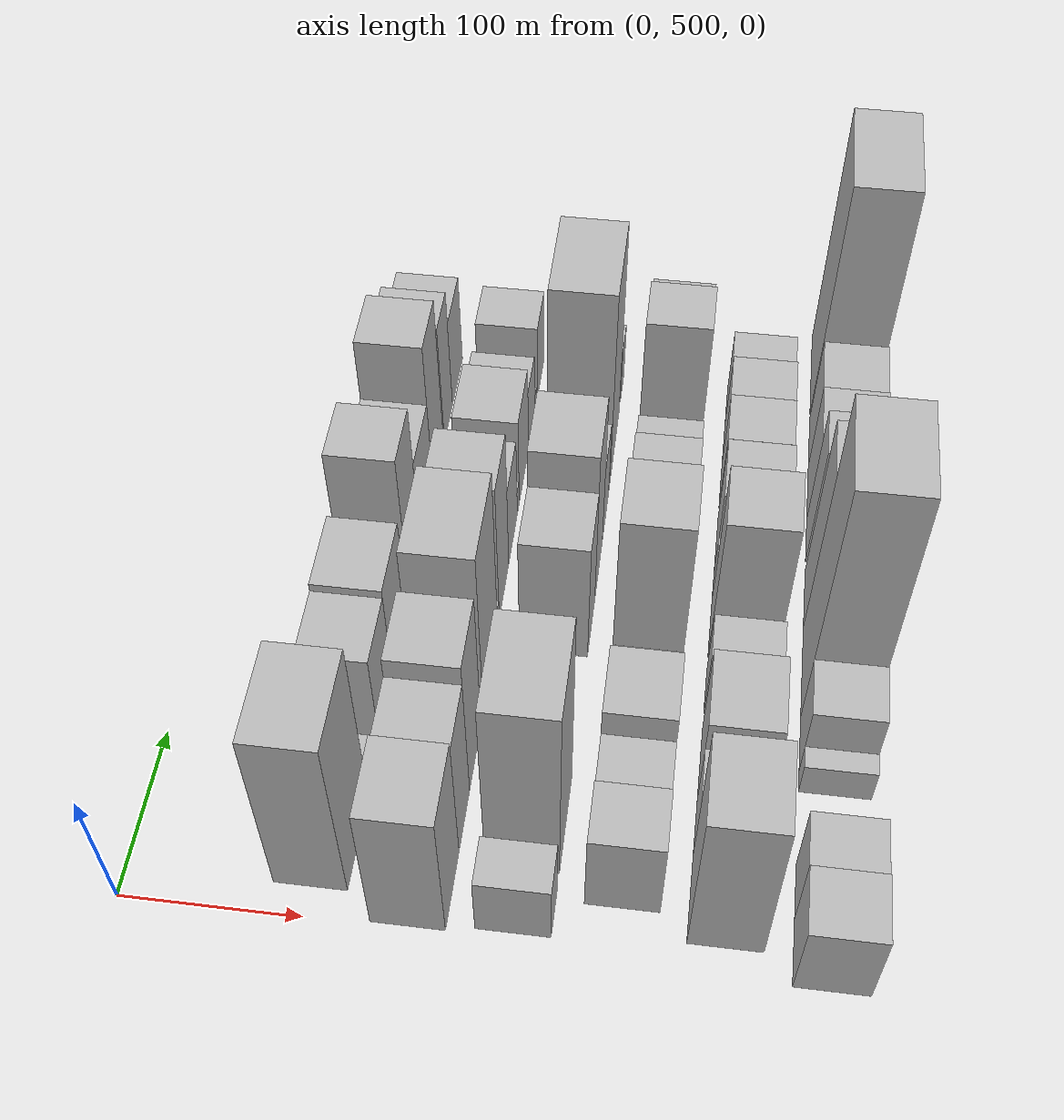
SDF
<sdf version="1.6">
 <world name="default">
  <model name="building_39">
   <static>1</static>
   <pose>100.0000 546.3660 0 0.000000 0.000000 0.000000</pose>
   <link name="link">
    <pose>0 0 72.00 0 0 0</pose>
    <collision name="collision"><geometry><box><size>40.0000 57.4672 144.0000</size></box></geometry></collision>
    <visual name="visual">
     <cast_shadows>0</cast_shadows>
     <geometry><box><size>40.0000 57.4672 144.0000</size></box></geometry>
     <material>
      <script>
       <uri>model://HANNAS_wall/materials/scripts</uri>
       <uri>model://HANNAS_wall/materials/textures</uri>
       <name>vrc/HANNAS_wall</name>
      </script>
     </material>
    </visual>
   </link>
  </model>
  <model name="building_40">
   <static>1</static>
   <pose>100.0000 584.2529 0 0.000000 0.000000 0.000000</pose>
   <link name="link">
    <pose>0 0 16.50 0 0 0</pose>
    <collision name="collision"><geometry><box><size>40.0000 18.3066 33.0000</size></box></geometry></collision>
    <visual name="visual">
     <cast_shadows>0</cast_shadows>
     <geometry><box><size>40.0000 18.3066 33.0000</size></box></geometry>
     <material>
      <script>
       <uri>model://HANNAS_wall/materials/scripts</uri>
       <uri>model://HANNAS_wall/materials/textures</uri>
       <name>vrc/HANNAS_wall</name>
      </script>
     </material>
    </visual>
   </link>
  </model>
  <model name="building_41">
   <static>1</static>
   <pose>100.0000 597.4368 0 0.000000 0.000000 0.000000</pose>
   <link name="link">
    <pose>0 0 9.00 0 0 0</pose>
    <collision name="collision"><geometry><box><size>40.0000 8.0611 18.0000</size></box></geometry></collision>
    <visual name="visual">
     <cast_shadows>0</cast_shadows>
     <geometry><box><size>40.0000 8.0611 18.0000</size></box></geometry>
     <material>
      <script>
       <uri>model://HANNAS_wall/materials/scripts</uri>
       <uri>model://HANNAS_wall/materials/textures</uri>
       <name>vrc/HANNAS_wall</name>
      </script>
     </material>
    </visual>
   </link>
  </model>
  <model name="building_42">
   <static>1</static>
   <pose>100.0000 629.4989 0 0.000000 0.000000 0.000000</pose>
   <link name="link">
    <pose>0 0 40.50 0 0 0</pose>
    <collision name="collision"><geometry><box><size>40.0000 42.0633 81.0000</size></box></geometry></collision>
    <visual name="visual">
     <cast_shadows>0</cast_shadows>
     <geometry><box><size>40.0000 42.0633 81.0000</size></box></geometry>
     <material>
      <script>
       <uri>model://HANNAS_wall/materials/scripts</uri>
       <uri>model://HANNAS_wall/materials/textures</uri>
       <name>vrc/HANNAS_wall</name>
      </script>
     </material>
    </visual>
   </link>
  </model>
  <model name="building_43">
   <static>1</static>
   <pose>100.0000 674.1150 0 0.000000 0.000000 0.000000</pose>
   <link name="link">
    <pose>0 0 43.50 0 0 0</pose>
    <collision name="collision"><geometry><box><size>40.0000 47.1688 87.0000</size></box></geometry></collision>
    <visual name="visual">
     <cast_shadows>0</cast_shadows>
     <geometry><box><size>40.0000 47.1688 87.0000</size></box></geometry>
     <material>
      <script>
       <uri>model://HANNAS_wall/materials/scripts</uri>
       <uri>model://HANNAS_wall/materials/textures</uri>
       <name>vrc/HANNAS_wall</name>
      </script>
     </material>
    </visual>
   </link>
  </model>
  <model name="building_44">
   <static>1</static>
   <pose>100.0000 726.0503 0 0.000000 0.000000 0.000000</pose>
   <link name="link">
    <pose>0 0 64.50 0 0 0</pose>
    <collision name="collision"><geometry><box><size>40.0000 38.7017 129.0000</size></box></geometry></collision>
    <visual name="visual">
     <cast_shadows>0</cast_shadows>
     <geometry><box><size>40.0000 38.7017 129.0000</size></box></geometry>
     <material>
      <script>
       <uri>model://HANNAS_wall/materials/scripts</uri>
       <uri>model://HANNAS_wall/materials/textures</uri>
       <name>vrc/HANNAS_wall</name>
      </script>
     </material>
    </visual>
   </link>
  </model>
  <model name="building_45">
   <static>1</static>
   <pose>100.0000 768.8857 0 0.000000 0.000000 0.000000</pose>
   <link name="link">
    <pose>0 0 40.50 0 0 0</pose>
    <collision name="collision"><geometry><box><size>40.0000 46.9692 81.0000</size></box></geometry></collision>
    <visual name="visual">
     <cast_shadows>0</cast_shadows>
     <geometry><box><size>40.0000 46.9692 81.0000</size></box></geometry>
     <material>
      <script>
       <uri>model://HANNAS_wall/materials/scripts</uri>
       <uri>model://HANNAS_wall/materials/textures</uri>
       <name>vrc/HANNAS_wall</name>
      </script>
     </material>
    </visual>
   </link>
  </model>
  <model name="building_46">
   <static>1</static>
   <pose>100.0000 811.8883 0 0.000000 0.000000 0.000000</pose>
   <link name="link">
    <pose>0 0 64.50 0 0 0</pose>
    <collision name="collision"><geometry><box><size>40.0000 39.0361 129.0000</size></box></geometry></collision>
    <visual name="visual">
     <cast_shadows>0</cast_shadows>
     <geometry><box><size>40.0000 39.0361 129.0000</size></box></geometry>
     <material>
      <script>
       <uri>model://HANNAS_wall/materials/scripts</uri>
       <uri>model://HANNAS_wall/materials/textures</uri>
       <name>vrc/HANNAS_wall</name>
      </script>
     </material>
    </visual>
   </link>
  </model>
  <model name="building_47">
   <static>1</static>
   <pose>100.0000 850.6495 0 0.000000 0.000000 0.000000</pose>
   <link name="link">
    <pose>0 0 51.00 0 0 0</pose>
    <collision name="collision"><geometry><box><size>40.0000 32.4864 102.0000</size></box></geometry></collision>
    <visual name="visual">
     <cast_shadows>0</cast_shadows>
     <geometry><box><size>40.0000 32.4864 102.0000</size></box></geometry>
     <material>
      <script>
       <uri>model://HANNAS_wall/materials/scripts</uri>
       <uri>model://HANNAS_wall/materials/textures</uri>
       <name>vrc/HANNAS_wall</name>
      </script>
     </material>
    </visual>
   </link>
  </model>
  <model name="building_48">
   <static>1</static>
   <pose>100.0000 888.0390 0 0.000000 0.000000 0.000000</pose>
   <link name="link">
    <pose>0 0 37.50 0 0 0</pose>
    <collision name="collision"><geometry><box><size>40.0000 42.2925 75.0000</size></box></geometry></collision>
    <visual name="visual">
     <cast_shadows>0</cast_shadows>
     <geometry><box><size>40.0000 42.2925 75.0000</size></box></geometry>
     <material>
      <script>
       <uri>model://HANNAS_wall/materials/scripts</uri>
       <uri>model://HANNAS_wall/materials/textures</uri>
       <name>vrc/HANNAS_wall</name>
      </script>
     </material>
    </visual>
   </link>
  </model>
  <model name="building_86">
   <static>1</static>
   <pose>155.0000 524.5119 0 0.000000 0.000000 0.000000</pose>
   <link name="link">
    <pose>0 0 57.00 0 0 0</pose>
    <collision name="collision"><geometry><box><size>40.0000 45.1361 114.0000</size></box></geometry></collision>
    <visual name="visual">
     <cast_shadows>0</cast_shadows>
     <geometry><box><size>40.0000 45.1361 114.0000</size></box></geometry>
     <material>
      <script>
       <uri>model://HANNAS_wall/materials/scripts</uri>
       <uri>model://HANNAS_wall/materials/textures</uri>
       <name>vrc/HANNAS_wall</name>
      </script>
     </material>
    </visual>
   </link>
  </model>
  <model name="building_87">
   <static>1</static>
   <pose>155.0000 565.7863 0 0.000000 0.000000 0.000000</pose>
   <link name="link">
    <pose>0 0 54.00 0 0 0</pose>
    <collision name="collision"><geometry><box><size>40.0000 37.4128 108.0000</size></box></geometry></collision>
    <visual name="visual">
     <cast_shadows>0</cast_shadows>
     <geometry><box><size>40.0000 37.4128 108.0000</size></box></geometry>
     <material>
      <script>
       <uri>model://HANNAS_wall/materials/scripts</uri>
       <uri>model://HANNAS_wall/materials/textures</uri>
       <name>vrc/HANNAS_wall</name>
      </script>
     </material>
    </visual>
   </link>
  </model>
  <model name="building_88">
   <static>1</static>
   <pose>155.0000 605.6203 0 0.000000 0.000000 0.000000</pose>
   <link name="link">
    <pose>0 0 61.50 0 0 0</pose>
    <collision name="collision"><geometry><box><size>40.0000 42.2552 123.0000</size></box></geometry></collision>
    <visual name="visual">
     <cast_shadows>0</cast_shadows>
     <geometry><box><size>40.0000 42.2552 123.0000</size></box></geometry>
     <material>
      <script>
       <uri>model://HANNAS_wall/materials/scripts</uri>
       <uri>model://HANNAS_wall/materials/textures</uri>
       <name>vrc/HANNAS_wall</name>
      </script>
     </material>
    </visual>
   </link>
  </model>
  <model name="building_89">
   <static>1</static>
   <pose>155.0000 664.4344 0 0.000000 0.000000 0.000000</pose>
   <link name="link">
    <pose>0 0 72.00 0 0 0</pose>
    <collision name="collision"><geometry><box><size>40.0000 57.3729 144.0000</size></box></geometry></collision>
    <visual name="visual">
     <cast_shadows>0</cast_shadows>
     <geometry><box><size>40.0000 57.3729 144.0000</size></box></geometry>
     <material>
      <script>
       <uri>model://HANNAS_wall/materials/scripts</uri>
       <uri>model://HANNAS_wall/materials/textures</uri>
       <name>vrc/HANNAS_wall</name>
      </script>
     </material>
    </visual>
   </link>
  </model>
  <model name="building_90">
   <static>1</static>
   <pose>155.0000 696.8789 0 0.000000 0.000000 0.000000</pose>
   <link name="link">
    <pose>0 0 9.00 0 0 0</pose>
    <collision name="collision"><geometry><box><size>40.0000 7.5162 18.0000</size></box></geometry></collision>
    <visual name="visual">
     <cast_shadows>0</cast_shadows>
     <geometry><box><size>40.0000 7.5162 18.0000</size></box></geometry>
     <material>
      <script>
       <uri>model://HANNAS_wall/materials/scripts</uri>
       <uri>model://HANNAS_wall/materials/textures</uri>
       <name>vrc/HANNAS_wall</name>
      </script>
     </material>
    </visual>
   </link>
  </model>
  <model name="building_91">
   <static>1</static>
   <pose>155.0000 720.9455 0 0.000000 0.000000 0.000000</pose>
   <link name="link">
    <pose>0 0 60.00 0 0 0</pose>
    <collision name="collision"><geometry><box><size>40.0000 40.6170 120.0000</size></box></geometry></collision>
    <visual name="visual">
     <cast_shadows>0</cast_shadows>
     <geometry><box><size>40.0000 40.6170 120.0000</size></box></geometry>
     <material>
      <script>
       <uri>model://HANNAS_wall/materials/scripts</uri>
       <uri>model://HANNAS_wall/materials/textures</uri>
       <name>vrc/HANNAS_wall</name>
      </script>
     </material>
    </visual>
   </link>
  </model>
  <model name="building_92">
   <static>1</static>
   <pose>155.0000 760.8347 0 0.000000 0.000000 0.000000</pose>
   <link name="link">
    <pose>0 0 34.50 0 0 0</pose>
    <collision name="collision"><geometry><box><size>40.0000 39.1614 69.0000</size></box></geometry></collision>
    <visual name="visual">
     <cast_shadows>0</cast_shadows>
     <geometry><box><size>40.0000 39.1614 69.0000</size></box></geometry>
     <material>
      <script>
       <uri>model://HANNAS_wall/materials/scripts</uri>
       <uri>model://HANNAS_wall/materials/textures</uri>
       <name>vrc/HANNAS_wall</name>
      </script>
     </material>
    </visual>
   </link>
  </model>
  <model name="building_93">
   <static>1</static>
   <pose>155.0000 785.1260 0 0.000000 0.000000 0.000000</pose>
   <link name="link">
    <pose>0 0 10.50 0 0 0</pose>
    <collision name="collision"><geometry><box><size>40.0000 9.4211 21.0000</size></box></geometry></collision>
    <visual name="visual">
     <cast_shadows>0</cast_shadows>
     <geometry><box><size>40.0000 9.4211 21.0000</size></box></geometry>
     <material>
      <script>
       <uri>model://HANNAS_wall/materials/scripts</uri>
       <uri>model://HANNAS_wall/materials/textures</uri>
       <name>vrc/HANNAS_wall</name>
      </script>
     </material>
    </visual>
   </link>
  </model>
  <model name="building_94">
   <static>1</static>
   <pose>155.0000 811.9600 0 0.000000 0.000000 0.000000</pose>
   <link name="link">
    <pose>0 0 37.50 0 0 0</pose>
    <collision name="collision"><geometry><box><size>40.0000 44.2470 75.0000</size></box></geometry></collision>
    <visual name="visual">
     <cast_shadows>0</cast_shadows>
     <geometry><box><size>40.0000 44.2470 75.0000</size></box></geometry>
     <material>
      <script>
       <uri>model://HANNAS_wall/materials/scripts</uri>
       <uri>model://HANNAS_wall/materials/textures</uri>
       <name>vrc/HANNAS_wall</name>
      </script>
     </material>
    </visual>
   </link>
  </model>
  <model name="building_95">
   <static>1</static>
   <pose>155.0000 849.6655 0 0.000000 0.000000 0.000000</pose>
   <link name="link">
    <pose>0 0 27.00 0 0 0</pose>
    <collision name="collision"><geometry><box><size>40.0000 31.1639 54.0000</size></box></geometry></collision>
    <visual name="visual">
     <cast_shadows>0</cast_shadows>
     <geometry><box><size>40.0000 31.1639 54.0000</size></box></geometry>
     <material>
      <script>
       <uri>model://HANNAS_wall/materials/scripts</uri>
       <uri>model://HANNAS_wall/materials/textures</uri>
       <name>vrc/HANNAS_wall</name>
      </script>
     </material>
    </visual>
   </link>
  </model>
  <model name="building_96">
   <static>1</static>
   <pose>155.0000 871.6995 0 0.000000 0.000000 0.000000</pose>
   <link name="link">
    <pose>0 0 7.50 0 0 0</pose>
    <collision name="collision"><geometry><box><size>40.0000 6.9041 15.0000</size></box></geometry></collision>
    <visual name="visual">
     <cast_shadows>0</cast_shadows>
     <geometry><box><size>40.0000 6.9041 15.0000</size></box></geometry>
     <material>
      <script>
       <uri>model://HANNAS_wall/materials/scripts</uri>
       <uri>model://HANNAS_wall/materials/textures</uri>
       <name>vrc/HANNAS_wall</name>
      </script>
     </material>
    </visual>
   </link>
  </model>
  <model name="building_97">
   <static>1</static>
   <pose>155.0000 898.5456 0 0.000000 0.000000 0.000000</pose>
   <link name="link">
    <pose>0 0 31.50 0 0 0</pose>
    <collision name="collision"><geometry><box><size>40.0000 34.7880 63.0000</size></box></geometry></collision>
    <visual name="visual">
     <cast_shadows>0</cast_shadows>
     <geometry><box><size>40.0000 34.7880 63.0000</size></box></geometry>
     <material>
      <script>
       <uri>model://HANNAS_wall/materials/scripts</uri>
       <uri>model://HANNAS_wall/materials/textures</uri>
       <name>vrc/HANNAS_wall</name>
      </script>
     </material>
    </visual>
   </link>
  </model>
  <model name="building_146">
   <static>1</static>
   <pose>210.0000 518.4481 0 0.000000 0.000000 0.000000</pose>
   <link name="link">
    <pose>0 0 25.50 0 0 0</pose>
    <collision name="collision"><geometry><box><size>40.0000 27.0367 51.0000</size></box></geometry></collision>
    <visual name="visual">
     <cast_shadows>0</cast_shadows>
     <geometry><box><size>40.0000 27.0367 51.0000</size></box></geometry>
     <material>
      <script>
       <uri>model://HANNAS_wall/materials/scripts</uri>
       <uri>model://HANNAS_wall/materials/textures</uri>
       <name>vrc/HANNAS_wall</name>
      </script>
     </material>
    </visual>
   </link>
  </model>
  <model name="building_147">
   <static>1</static>
   <pose>210.0000 570.1740 0 0.000000 0.000000 0.000000</pose>
   <link name="link">
    <pose>0 0 78.00 0 0 0</pose>
    <collision name="collision"><geometry><box><size>40.0000 58.4151 156.0000</size></box></geometry></collision>
    <visual name="visual">
     <cast_shadows>0</cast_shadows>
     <geometry><box><size>40.0000 58.4151 156.0000</size></box></geometry>
     <material>
      <script>
       <uri>model://HANNAS_wall/materials/scripts</uri>
       <uri>model://HANNAS_wall/materials/textures</uri>
       <name>vrc/HANNAS_wall</name>
      </script>
     </material>
    </visual>
   </link>
  </model>
  <model name="building_148">
   <static>1</static>
   <pose>210.0000 700.4237 0 0.000000 0.000000 0.000000</pose>
   <link name="link">
    <pose>0 0 51.00 0 0 0</pose>
    <collision name="collision"><geometry><box><size>40.0000 40.6948 102.0000</size></box></geometry></collision>
    <visual name="visual">
     <cast_shadows>0</cast_shadows>
     <geometry><box><size>40.0000 40.6948 102.0000</size></box></geometry>
     <material>
      <script>
       <uri>model://HANNAS_wall/materials/scripts</uri>
       <uri>model://HANNAS_wall/materials/textures</uri>
       <name>vrc/HANNAS_wall</name>
      </script>
     </material>
    </visual>
   </link>
  </model>
  <model name="building_149">
   <static>1</static>
   <pose>210.0000 743.1568 0 0.000000 0.000000 0.000000</pose>
   <link name="link">
    <pose>0 0 66.00 0 0 0</pose>
    <collision name="collision"><geometry><box><size>40.0000 44.7715 132.0000</size></box></geometry></collision>
    <visual name="visual">
     <cast_shadows>0</cast_shadows>
     <geometry><box><size>40.0000 44.7715 132.0000</size></box></geometry>
     <material>
      <script>
       <uri>model://HANNAS_wall/materials/scripts</uri>
       <uri>model://HANNAS_wall/materials/textures</uri>
       <name>vrc/HANNAS_wall</name>
      </script>
     </material>
    </visual>
   </link>
  </model>
  <model name="building_150">
   <static>1</static>
   <pose>210.0000 784.7964 0 0.000000 0.000000 0.000000</pose>
   <link name="link">
    <pose>0 0 33.00 0 0 0</pose>
    <collision name="collision"><geometry><box><size>40.0000 38.5078 66.0000</size></box></geometry></collision>
    <visual name="visual">
     <cast_shadows>0</cast_shadows>
     <geometry><box><size>40.0000 38.5078 66.0000</size></box></geometry>
     <material>
      <script>
       <uri>model://HANNAS_wall/materials/scripts</uri>
       <uri>model://HANNAS_wall/materials/textures</uri>
       <name>vrc/HANNAS_wall</name>
      </script>
     </material>
    </visual>
   </link>
  </model>
  <model name="building_151">
   <static>1</static>
   <pose>210.0000 807.8645 0 0.000000 0.000000 0.000000</pose>
   <link name="link">
    <pose>0 0 9.00 0 0 0</pose>
    <collision name="collision"><geometry><box><size>40.0000 7.6284 18.0000</size></box></geometry></collision>
    <visual name="visual">
     <cast_shadows>0</cast_shadows>
     <geometry><box><size>40.0000 7.6284 18.0000</size></box></geometry>
     <material>
      <script>
       <uri>model://HANNAS_wall/materials/scripts</uri>
       <uri>model://HANNAS_wall/materials/textures</uri>
       <name>vrc/HANNAS_wall</name>
      </script>
     </material>
    </visual>
   </link>
  </model>
  <model name="building_152">
   <static>1</static>
   <pose>210.0000 842.6222 0 0.000000 0.000000 0.000000</pose>
   <link name="link">
    <pose>0 0 82.50 0 0 0</pose>
    <collision name="collision"><geometry><box><size>40.0000 61.8870 165.0000</size></box></geometry></collision>
    <visual name="visual">
     <cast_shadows>0</cast_shadows>
     <geometry><box><size>40.0000 61.8870 165.0000</size></box></geometry>
     <material>
      <script>
       <uri>model://HANNAS_wall/materials/scripts</uri>
       <uri>model://HANNAS_wall/materials/textures</uri>
       <name>vrc/HANNAS_wall</name>
      </script>
     </material>
    </visual>
   </link>
  </model>
  <model name="building_153">
   <static>1</static>
   <pose>210.0000 894.9457 0 0.000000 0.000000 0.000000</pose>
   <link name="link">
    <pose>0 0 24.00 0 0 0</pose>
    <collision name="collision"><geometry><box><size>40.0000 24.7601 48.0000</size></box></geometry></collision>
    <visual name="visual">
     <cast_shadows>0</cast_shadows>
     <geometry><box><size>40.0000 24.7601 48.0000</size></box></geometry>
     <material>
      <script>
       <uri>model://HANNAS_wall/materials/scripts</uri>
       <uri>model://HANNAS_wall/materials/textures</uri>
       <name>vrc/HANNAS_wall</name>
      </script>
     </material>
    </visual>
   </link>
  </model>
  <model name="building_197">
   <static>1</static>
   <pose>265.0000 543.3505 0 0.000000 0.000000 0.000000</pose>
   <link name="link">
    <pose>0 0 34.50 0 0 0</pose>
    <collision name="collision"><geometry><box><size>40.0000 35.2235 69.0000</size></box></geometry></collision>
    <visual name="visual">
     <cast_shadows>0</cast_shadows>
     <geometry><box><size>40.0000 35.2235 69.0000</size></box></geometry>
     <material>
      <script>
       <uri>model://HANNAS_wall/materials/scripts</uri>
       <uri>model://HANNAS_wall/materials/textures</uri>
       <name>vrc/HANNAS_wall</name>
      </script>
     </material>
    </visual>
   </link>
  </model>
  <model name="building_198">
   <static>1</static>
   <pose>265.0000 581.7174 0 0.000000 0.000000 0.000000</pose>
   <link name="link">
    <pose>0 0 27.00 0 0 0</pose>
    <collision name="collision"><geometry><box><size>40.0000 31.5103 54.0000</size></box></geometry></collision>
    <visual name="visual">
     <cast_shadows>0</cast_shadows>
     <geometry><box><size>40.0000 31.5103 54.0000</size></box></geometry>
     <material>
      <script>
       <uri>model://HANNAS_wall/materials/scripts</uri>
       <uri>model://HANNAS_wall/materials/textures</uri>
       <name>vrc/HANNAS_wall</name>
      </script>
     </material>
    </visual>
   </link>
  </model>
  <model name="building_199">
   <static>1</static>
   <pose>265.0000 618.6137 0 0.000000 0.000000 0.000000</pose>
   <link name="link">
    <pose>0 0 37.50 0 0 0</pose>
    <collision name="collision"><geometry><box><size>40.0000 42.2823 75.0000</size></box></geometry></collision>
    <visual name="visual">
     <cast_shadows>0</cast_shadows>
     <geometry><box><size>40.0000 42.2823 75.0000</size></box></geometry>
     <material>
      <script>
       <uri>model://HANNAS_wall/materials/scripts</uri>
       <uri>model://HANNAS_wall/materials/textures</uri>
       <name>vrc/HANNAS_wall</name>
      </script>
     </material>
    </visual>
   </link>
  </model>
  <model name="building_200">
   <static>1</static>
   <pose>265.0000 644.5290 0 0.000000 0.000000 0.000000</pose>
   <link name="link">
    <pose>0 0 10.50 0 0 0</pose>
    <collision name="collision"><geometry><box><size>40.0000 9.5484 21.0000</size></box></geometry></collision>
    <visual name="visual">
     <cast_shadows>0</cast_shadows>
     <geometry><box><size>40.0000 9.5484 21.0000</size></box></geometry>
     <material>
      <script>
       <uri>model://HANNAS_wall/materials/scripts</uri>
       <uri>model://HANNAS_wall/materials/textures</uri>
       <name>vrc/HANNAS_wall</name>
      </script>
     </material>
    </visual>
   </link>
  </model>
  <model name="building_201">
   <static>1</static>
   <pose>265.0000 658.7990 0 0.000000 0.000000 0.000000</pose>
   <link name="link">
    <pose>0 0 16.50 0 0 0</pose>
    <collision name="collision"><geometry><box><size>40.0000 18.9916 33.0000</size></box></geometry></collision>
    <visual name="visual">
     <cast_shadows>0</cast_shadows>
     <geometry><box><size>40.0000 18.9916 33.0000</size></box></geometry>
     <material>
      <script>
       <uri>model://HANNAS_wall/materials/scripts</uri>
       <uri>model://HANNAS_wall/materials/textures</uri>
       <name>vrc/HANNAS_wall</name>
      </script>
     </material>
    </visual>
   </link>
  </model>
  <model name="building_202">
   <static>1</static>
   <pose>265.0000 690.4179 0 0.000000 0.000000 0.000000</pose>
   <link name="link">
    <pose>0 0 72.00 0 0 0</pose>
    <collision name="collision"><geometry><box><size>40.0000 44.2461 144.0000</size></box></geometry></collision>
    <visual name="visual">
     <cast_shadows>0</cast_shadows>
     <geometry><box><size>40.0000 44.2461 144.0000</size></box></geometry>
     <material>
      <script>
       <uri>model://HANNAS_wall/materials/scripts</uri>
       <uri>model://HANNAS_wall/materials/textures</uri>
       <name>vrc/HANNAS_wall</name>
      </script>
     </material>
    </visual>
   </link>
  </model>
  <model name="building_203">
   <static>1</static>
   <pose>265.0000 731.5878 0 0.000000 0.000000 0.000000</pose>
   <link name="link">
    <pose>0 0 36.00 0 0 0</pose>
    <collision name="collision"><geometry><box><size>40.0000 38.0938 72.0000</size></box></geometry></collision>
    <visual name="visual">
     <cast_shadows>0</cast_shadows>
     <geometry><box><size>40.0000 38.0938 72.0000</size></box></geometry>
     <material>
      <script>
       <uri>model://HANNAS_wall/materials/scripts</uri>
       <uri>model://HANNAS_wall/materials/textures</uri>
       <name>vrc/HANNAS_wall</name>
      </script>
     </material>
    </visual>
   </link>
  </model>
  <model name="building_204">
   <static>1</static>
   <pose>265.0000 771.3172 0 0.000000 0.000000 0.000000</pose>
   <link name="link">
    <pose>0 0 37.50 0 0 0</pose>
    <collision name="collision"><geometry><box><size>40.0000 41.3649 75.0000</size></box></geometry></collision>
    <visual name="visual">
     <cast_shadows>0</cast_shadows>
     <geometry><box><size>40.0000 41.3649 75.0000</size></box></geometry>
     <material>
      <script>
       <uri>model://HANNAS_wall/materials/scripts</uri>
       <uri>model://HANNAS_wall/materials/textures</uri>
       <name>vrc/HANNAS_wall</name>
      </script>
     </material>
    </visual>
   </link>
  </model>
  <model name="building_205">
   <static>1</static>
   <pose>265.0000 807.0412 0 0.000000 0.000000 0.000000</pose>
   <link name="link">
    <pose>0 0 28.50 0 0 0</pose>
    <collision name="collision"><geometry><box><size>40.0000 30.0831 57.0000</size></box></geometry></collision>
    <visual name="visual">
     <cast_shadows>0</cast_shadows>
     <geometry><box><size>40.0000 30.0831 57.0000</size></box></geometry>
     <material>
      <script>
       <uri>model://HANNAS_wall/materials/scripts</uri>
       <uri>model://HANNAS_wall/materials/textures</uri>
       <name>vrc/HANNAS_wall</name>
      </script>
     </material>
    </visual>
   </link>
  </model>
  <model name="building_206">
   <static>1</static>
   <pose>265.0000 834.7191 0 0.000000 0.000000 0.000000</pose>
   <link name="link">
    <pose>0 0 15.00 0 0 0</pose>
    <collision name="collision"><geometry><box><size>40.0000 17.2728 30.0000</size></box></geometry></collision>
    <visual name="visual">
     <cast_shadows>0</cast_shadows>
     <geometry><box><size>40.0000 17.2728 30.0000</size></box></geometry>
     <material>
      <script>
       <uri>model://HANNAS_wall/materials/scripts</uri>
       <uri>model://HANNAS_wall/materials/textures</uri>
       <name>vrc/HANNAS_wall</name>
      </script>
     </material>
    </visual>
   </link>
  </model>
  <model name="building_207">
   <static>1</static>
   <pose>265.0000 861.6364 0 0.000000 0.000000 0.000000</pose>
   <link name="link">
    <pose>0 0 57.00 0 0 0</pose>
    <collision name="collision"><geometry><box><size>40.0000 36.5619 114.0000</size></box></geometry></collision>
    <visual name="visual">
     <cast_shadows>0</cast_shadows>
     <geometry><box><size>40.0000 36.5619 114.0000</size></box></geometry>
     <material>
      <script>
       <uri>model://HANNAS_wall/materials/scripts</uri>
       <uri>model://HANNAS_wall/materials/textures</uri>
       <name>vrc/HANNAS_wall</name>
      </script>
     </material>
    </visual>
   </link>
  </model>
  <model name="building_208">
   <static>1</static>
   <pose>265.0000 901.8651 0 0.000000 0.000000 0.000000</pose>
   <link name="link">
    <pose>0 0 37.50 0 0 0</pose>
    <collision name="collision"><geometry><box><size>40.0000 43.8954 75.0000</size></box></geometry></collision>
    <visual name="visual">
     <cast_shadows>0</cast_shadows>
     <geometry><box><size>40.0000 43.8954 75.0000</size></box></geometry>
     <material>
      <script>
       <uri>model://HANNAS_wall/materials/scripts</uri>
       <uri>model://HANNAS_wall/materials/textures</uri>
       <name>vrc/HANNAS_wall</name>
      </script>
     </material>
    </visual>
   </link>
  </model>
  <model name="building_249">
   <static>1</static>
   <pose>320.0000 535.4721 0 0.000000 0.000000 0.000000</pose>
   <link name="link">
    <pose>0 0 64.50 0 0 0</pose>
    <collision name="collision"><geometry><box><size>40.0000 49.9829 129.0000</size></box></geometry></collision>
    <visual name="visual">
     <cast_shadows>0</cast_shadows>
     <geometry><box><size>40.0000 49.9829 129.0000</size></box></geometry>
     <material>
      <script>
       <uri>model://HANNAS_wall/materials/scripts</uri>
       <uri>model://HANNAS_wall/materials/textures</uri>
       <name>vrc/HANNAS_wall</name>
      </script>
     </material>
    </visual>
   </link>
  </model>
  <model name="building_250">
   <static>1</static>
   <pose>320.0000 576.8520 0 0.000000 0.000000 0.000000</pose>
   <link name="link">
    <pose>0 0 28.50 0 0 0</pose>
    <collision name="collision"><geometry><box><size>40.0000 32.7769 57.0000</size></box></geometry></collision>
    <visual name="visual">
     <cast_shadows>0</cast_shadows>
     <geometry><box><size>40.0000 32.7769 57.0000</size></box></geometry>
     <material>
      <script>
       <uri>model://HANNAS_wall/materials/scripts</uri>
       <uri>model://HANNAS_wall/materials/textures</uri>
       <name>vrc/HANNAS_wall</name>
      </script>
     </material>
    </visual>
   </link>
  </model>
  <model name="building_251">
   <static>1</static>
   <pose>320.0000 616.6432 0 0.000000 0.000000 0.000000</pose>
   <link name="link">
    <pose>0 0 40.50 0 0 0</pose>
    <collision name="collision"><geometry><box><size>40.0000 46.8054 81.0000</size></box></geometry></collision>
    <visual name="visual">
     <cast_shadows>0</cast_shadows>
     <geometry><box><size>40.0000 46.8054 81.0000</size></box></geometry>
     <material>
      <script>
       <uri>model://HANNAS_wall/materials/scripts</uri>
       <uri>model://HANNAS_wall/materials/textures</uri>
       <name>vrc/HANNAS_wall</name>
      </script>
     </material>
    </visual>
   </link>
  </model>
  <model name="building_252">
   <static>1</static>
   <pose>320.0000 664.7017 0 0.000000 0.000000 0.000000</pose>
   <link name="link">
    <pose>0 0 28.50 0 0 0</pose>
    <collision name="collision"><geometry><box><size>40.0000 29.3117 57.0000</size></box></geometry></collision>
    <visual name="visual">
     <cast_shadows>0</cast_shadows>
     <geometry><box><size>40.0000 29.3117 57.0000</size></box></geometry>
     <material>
      <script>
       <uri>model://HANNAS_wall/materials/scripts</uri>
       <uri>model://HANNAS_wall/materials/textures</uri>
       <name>vrc/HANNAS_wall</name>
      </script>
     </material>
    </visual>
   </link>
  </model>
  <model name="building_253">
   <static>1</static>
   <pose>320.0000 708.8721 0 0.000000 0.000000 0.000000</pose>
   <link name="link">
    <pose>0 0 63.00 0 0 0</pose>
    <collision name="collision"><geometry><box><size>40.0000 41.0291 126.0000</size></box></geometry></collision>
    <visual name="visual">
     <cast_shadows>0</cast_shadows>
     <geometry><box><size>40.0000 41.0291 126.0000</size></box></geometry>
     <material>
      <script>
       <uri>model://HANNAS_wall/materials/scripts</uri>
       <uri>model://HANNAS_wall/materials/textures</uri>
       <name>vrc/HANNAS_wall</name>
      </script>
     </material>
    </visual>
   </link>
  </model>
  <model name="building_254">
   <static>1</static>
   <pose>320.0000 739.5570 0 0.000000 0.000000 0.000000</pose>
   <link name="link">
    <pose>0 0 18.00 0 0 0</pose>
    <collision name="collision"><geometry><box><size>40.0000 20.3406 36.0000</size></box></geometry></collision>
    <visual name="visual">
     <cast_shadows>0</cast_shadows>
     <geometry><box><size>40.0000 20.3406 36.0000</size></box></geometry>
     <material>
      <script>
       <uri>model://HANNAS_wall/materials/scripts</uri>
       <uri>model://HANNAS_wall/materials/textures</uri>
       <name>vrc/HANNAS_wall</name>
      </script>
     </material>
    </visual>
   </link>
  </model>
  <model name="building_255">
   <static>1</static>
   <pose>320.0000 771.5915 0 0.000000 0.000000 0.000000</pose>
   <link name="link">
    <pose>0 0 37.50 0 0 0</pose>
    <collision name="collision"><geometry><box><size>40.0000 43.7285 75.0000</size></box></geometry></collision>
    <visual name="visual">
     <cast_shadows>0</cast_shadows>
     <geometry><box><size>40.0000 43.7285 75.0000</size></box></geometry>
     <material>
      <script>
       <uri>model://HANNAS_wall/materials/scripts</uri>
       <uri>model://HANNAS_wall/materials/textures</uri>
       <name>vrc/HANNAS_wall</name>
      </script>
     </material>
    </visual>
   </link>
  </model>
  <model name="building_256">
   <static>1</static>
   <pose>320.0000 819.5526 0 0.000000 0.000000 0.000000</pose>
   <link name="link">
    <pose>0 0 33.00 0 0 0</pose>
    <collision name="collision"><geometry><box><size>40.0000 36.1936 66.0000</size></box></geometry></collision>
    <visual name="visual">
     <cast_shadows>0</cast_shadows>
     <geometry><box><size>40.0000 36.1936 66.0000</size></box></geometry>
     <material>
      <script>
       <uri>model://HANNAS_wall/materials/scripts</uri>
       <uri>model://HANNAS_wall/materials/textures</uri>
       <name>vrc/HANNAS_wall</name>
      </script>
     </material>
    </visual>
   </link>
  </model>
  <model name="building_257">
   <static>1</static>
   <pose>320.0000 855.3664 0 0.000000 0.000000 0.000000</pose>
   <link name="link">
    <pose>0 0 31.50 0 0 0</pose>
    <collision name="collision"><geometry><box><size>40.0000 35.4340 63.0000</size></box></geometry></collision>
    <visual name="visual">
     <cast_shadows>0</cast_shadows>
     <geometry><box><size>40.0000 35.4340 63.0000</size></box></geometry>
     <material>
      <script>
       <uri>model://HANNAS_wall/materials/scripts</uri>
       <uri>model://HANNAS_wall/materials/textures</uri>
       <name>vrc/HANNAS_wall</name>
      </script>
     </material>
    </visual>
   </link>
  </model>
  <model name="building_258">
   <static>1</static>
   <pose>320.0000 888.4423 0 0.000000 0.000000 0.000000</pose>
   <link name="link">
    <pose>0 0 27.00 0 0 0</pose>
    <collision name="collision"><geometry><box><size>40.0000 30.7180 54.0000</size></box></geometry></collision>
    <visual name="visual">
     <cast_shadows>0</cast_shadows>
     <geometry><box><size>40.0000 30.7180 54.0000</size></box></geometry>
     <material>
      <script>
       <uri>model://HANNAS_wall/materials/scripts</uri>
       <uri>model://HANNAS_wall/materials/textures</uri>
       <name>vrc/HANNAS_wall</name>
      </script>
     </material>
    </visual>
   </link>
  </model>
  <model name="building_299">
   <static>1</static>
   <pose>375.0000 512.2928 0 0.000000 0.000000 0.000000</pose>
   <link name="link">
    <pose>0 0 31.50 0 0 0</pose>
    <collision name="collision"><geometry><box><size>40.0000 36.8952 63.0000</size></box></geometry></collision>
    <visual name="visual">
     <cast_shadows>0</cast_shadows>
     <geometry><box><size>40.0000 36.8952 63.0000</size></box></geometry>
     <material>
      <script>
       <uri>model://HANNAS_wall/materials/scripts</uri>
       <uri>model://HANNAS_wall/materials/textures</uri>
       <name>vrc/HANNAS_wall</name>
      </script>
     </material>
    </visual>
   </link>
  </model>
  <model name="building_300">
   <static>1</static>
   <pose>375.0000 546.5157 0 0.000000 0.000000 0.000000</pose>
   <link name="link">
    <pose>0 0 30.00 0 0 0</pose>
    <collision name="collision"><geometry><box><size>40.0000 31.5506 60.0000</size></box></geometry></collision>
    <visual name="visual">
     <cast_shadows>0</cast_shadows>
     <geometry><box><size>40.0000 31.5506 60.0000</size></box></geometry>
     <material>
      <script>
       <uri>model://HANNAS_wall/materials/scripts</uri>
       <uri>model://HANNAS_wall/materials/textures</uri>
       <name>vrc/HANNAS_wall</name>
      </script>
     </material>
    </visual>
   </link>
  </model>
  <model name="building_301">
   <static>1</static>
   <pose>375.0000 612.7991 0 0.000000 0.000000 0.000000</pose>
   <link name="link">
    <pose>0 0 13.50 0 0 0</pose>
    <collision name="collision"><geometry><box><size>40.0000 13.0054 27.0000</size></box></geometry></collision>
    <visual name="visual">
     <cast_shadows>0</cast_shadows>
     <geometry><box><size>40.0000 13.0054 27.0000</size></box></geometry>
     <material>
      <script>
       <uri>model://HANNAS_wall/materials/scripts</uri>
       <uri>model://HANNAS_wall/materials/textures</uri>
       <name>vrc/HANNAS_wall</name>
      </script>
     </material>
    </visual>
   </link>
  </model>
  <model name="building_302">
   <static>1</static>
   <pose>375.0000 636.7930 0 0.000000 0.000000 0.000000</pose>
   <link name="link">
    <pose>0 0 30.00 0 0 0</pose>
    <collision name="collision"><geometry><box><size>40.0000 34.9825 60.0000</size></box></geometry></collision>
    <visual name="visual">
     <cast_shadows>0</cast_shadows>
     <geometry><box><size>40.0000 34.9825 60.0000</size></box></geometry>
     <material>
      <script>
       <uri>model://HANNAS_wall/materials/scripts</uri>
       <uri>model://HANNAS_wall/materials/textures</uri>
       <name>vrc/HANNAS_wall</name>
      </script>
     </material>
    </visual>
   </link>
  </model>
  <model name="building_303">
   <static>1</static>
   <pose>375.0000 685.5516 0 0.000000 0.000000 0.000000</pose>
   <link name="link">
    <pose>0 0 102.00 0 0 0</pose>
    <collision name="collision"><geometry><box><size>40.0000 62.5348 204.0000</size></box></geometry></collision>
    <visual name="visual">
     <cast_shadows>0</cast_shadows>
     <geometry><box><size>40.0000 62.5348 204.0000</size></box></geometry>
     <material>
      <script>
       <uri>model://HANNAS_wall/materials/scripts</uri>
       <uri>model://HANNAS_wall/materials/textures</uri>
       <name>vrc/HANNAS_wall</name>
      </script>
     </material>
    </visual>
   </link>
  </model>
  <model name="building_304">
   <static>1</static>
   <pose>375.0000 737.7332 0 0.000000 0.000000 0.000000</pose>
   <link name="link">
    <pose>0 0 69.00 0 0 0</pose>
    <collision name="collision"><geometry><box><size>40.0000 41.8283 138.0000</size></box></geometry></collision>
    <visual name="visual">
     <cast_shadows>0</cast_shadows>
     <geometry><box><size>40.0000 41.8283 138.0000</size></box></geometry>
     <material>
      <script>
       <uri>model://HANNAS_wall/materials/scripts</uri>
       <uri>model://HANNAS_wall/materials/textures</uri>
       <name>vrc/HANNAS_wall</name>
      </script>
     </material>
    </visual>
   </link>
  </model>
  <model name="building_305">
   <static>1</static>
   <pose>375.0000 782.1734 0 0.000000 0.000000 0.000000</pose>
   <link name="link">
    <pose>0 0 51.00 0 0 0</pose>
    <collision name="collision"><geometry><box><size>40.0000 33.0522 102.0000</size></box></geometry></collision>
    <visual name="visual">
     <cast_shadows>0</cast_shadows>
     <geometry><box><size>40.0000 33.0522 102.0000</size></box></geometry>
     <material>
      <script>
       <uri>model://HANNAS_wall/materials/scripts</uri>
       <uri>model://HANNAS_wall/materials/textures</uri>
       <name>vrc/HANNAS_wall</name>
      </script>
     </material>
    </visual>
   </link>
  </model>
  <model name="building_306">
   <static>1</static>
   <pose>375.0000 820.5726 0 0.000000 0.000000 0.000000</pose>
   <link name="link">
    <pose>0 0 37.50 0 0 0</pose>
    <collision name="collision"><geometry><box><size>40.0000 43.7460 75.0000</size></box></geometry></collision>
    <visual name="visual">
     <cast_shadows>0</cast_shadows>
     <geometry><box><size>40.0000 43.7460 75.0000</size></box></geometry>
     <material>
      <script>
       <uri>model://HANNAS_wall/materials/scripts</uri>
       <uri>model://HANNAS_wall/materials/textures</uri>
       <name>vrc/HANNAS_wall</name>
      </script>
     </material>
    </visual>
   </link>
  </model>
  <model name="building_307">
   <static>1</static>
   <pose>375.0000 863.2332 0 0.000000 0.000000 0.000000</pose>
   <link name="link">
    <pose>0 0 36.00 0 0 0</pose>
    <collision name="collision"><geometry><box><size>40.0000 41.5753 72.0000</size></box></geometry></collision>
    <visual name="visual">
     <cast_shadows>0</cast_shadows>
     <geometry><box><size>40.0000 41.5753 72.0000</size></box></geometry>
     <material>
      <script>
       <uri>model://HANNAS_wall/materials/scripts</uri>
       <uri>model://HANNAS_wall/materials/textures</uri>
       <name>vrc/HANNAS_wall</name>
      </script>
     </material>
    </visual>
   </link>
  </model>
  <model name="building_308">
   <static>1</static>
   <pose>375.0000 923.8952 0 0.000000 0.000000 0.000000</pose>
   <link name="link">
    <pose>0 0 96.00 0 0 0</pose>
    <collision name="collision"><geometry><box><size>40.0000 71.7487 192.0000</size></box></geometry></collision>
    <visual name="visual">
     <cast_shadows>0</cast_shadows>
     <geometry><box><size>40.0000 71.7487 192.0000</size></box></geometry>
     <material>
      <script>
       <uri>model://HANNAS_wall/materials/scripts</uri>
       <uri>model://HANNAS_wall/materials/textures</uri>
       <name>vrc/HANNAS_wall</name>
      </script>
     </material>
    </visual>
   </link>
  </model>
 </world>
</sdf>
